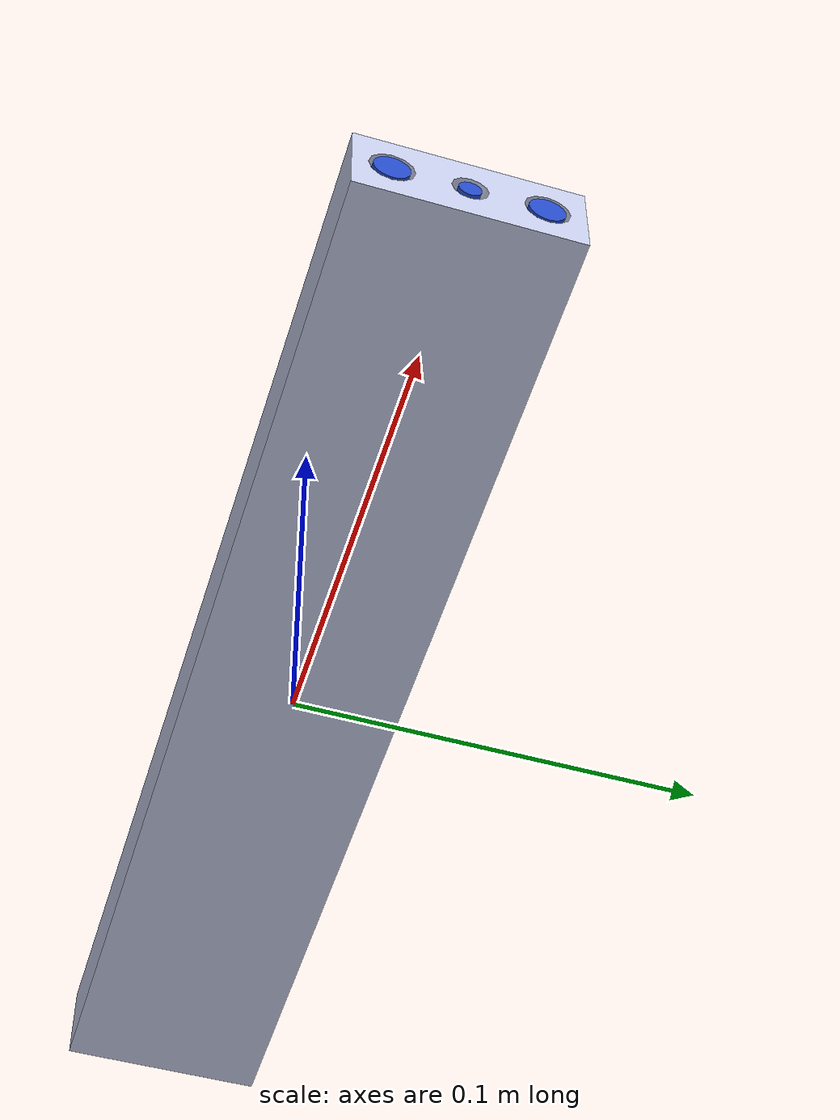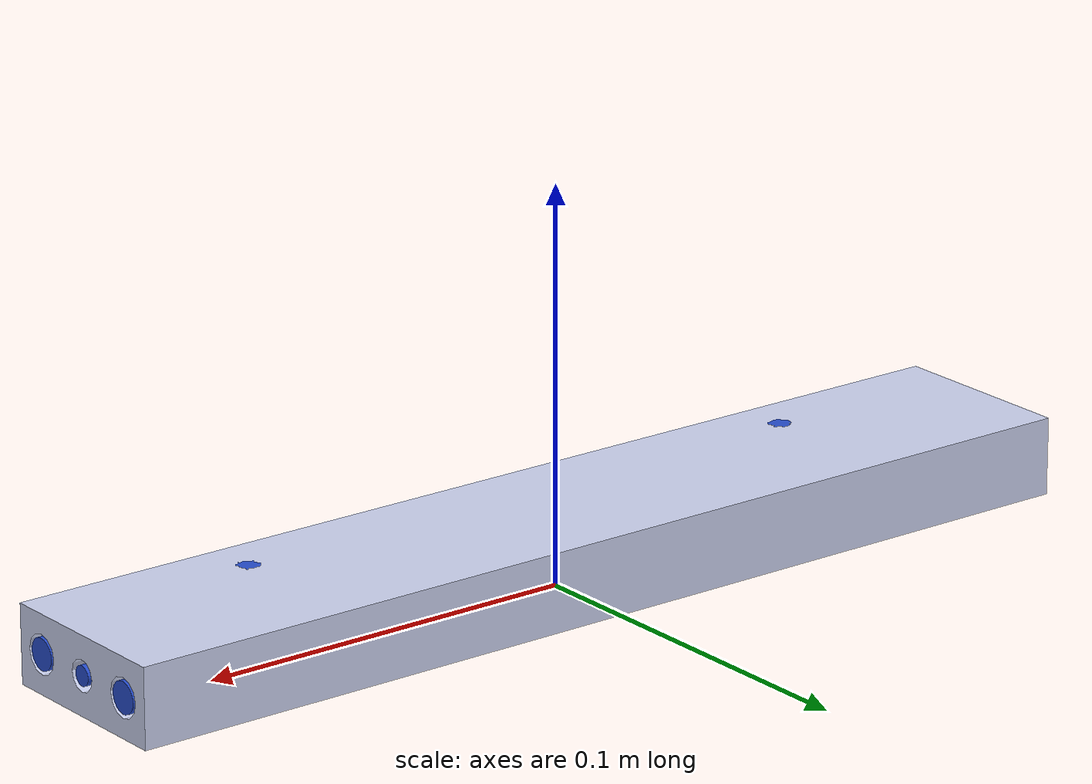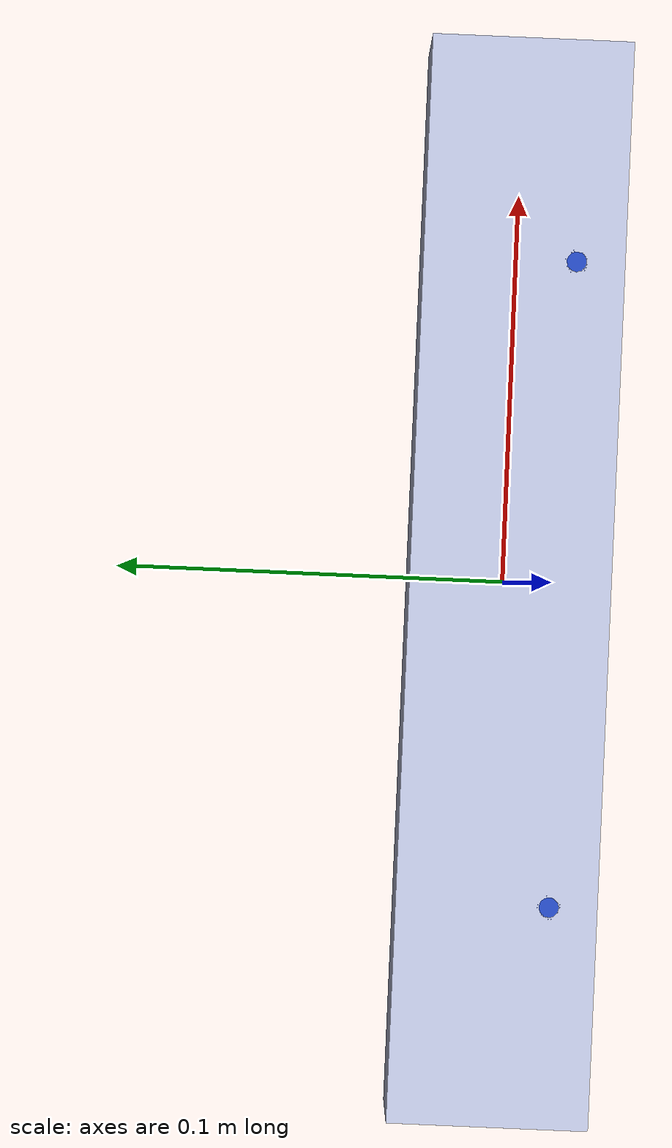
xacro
<?xml version="1.0" encoding="utf-8"?>
<robot name="PART3.SLDPRT" xmlns:xacro="http://www.ros.org/wiki/xacro">

	<link name="PART3.SLDPRT">
		<inertial>
			<origin xyz="-1.6524E-18 1.9536E-05 0.0099925" rpy="0 0 0"></origin>
			<mass value="0.26131"></mass>
			<inertia ixx="6.3365E-05" ixy="-1.8215E-20" ixz="1.4204E-20" iyy="0.0015168" iyz="2.5564E-08" izz="0.0015623"></inertia>
		</inertial>
		<visual>
			<origin xyz="0 0 0" rpy="0 0 0"></origin>
			<geometry>
				<mesh filename="package://object_description/urdfs_from_hj/PART3.SLDPRT/meshes/PART3.SLDPRT.STL"></mesh>
			</geometry>
			<material name="">
				<color rgba="0.79216 0.81961 0.93333 1"></color>
			</material>
		</visual>
		<collision>
			<origin xyz="0 0 0" rpy="0 0 0"></origin>
			<geometry>
				<mesh filename="package://object_description/urdfs_from_hj/PART3.SLDPRT/meshes/PART3.SLDPRT.STL"></mesh>
			</geometry>
		</collision>
	</link>
	<link name="PART3 hole blocked 1">
		<visual>
			<origin xyz="0 0 0" rpy="0 0 0"></origin>
			<geometry>
				<cylinder length="0.023" radius="0.004"></cylinder>
			</geometry>
		</visual>
	</link>
	<link name="PART3 hole blocked 2">
		<visual>
			<origin xyz="0 0 0" rpy="0 0 0"></origin>
			<geometry>
				<cylinder length="0.023" radius="0.004"></cylinder>
			</geometry>
		</visual>
	</link>
	<link name="PART3 hole blocked 3">
		<visual>
			<origin xyz="0 0 0" rpy="0 0 0"></origin>
			<geometry>
				<cylinder length="0.023" radius="0.0025"></cylinder>
			</geometry>
		</visual>
	</link>
	<link name="PART3 hole blocked 4">
		<visual>
			<origin xyz="0 0 0" rpy="0 0 0"></origin>
			<geometry>
				<cylinder length="0.023" radius="0.0025"></cylinder>
			</geometry>
		</visual>
	</link>
	<link name="PART3 hole blocked 5">
		<visual>
			<origin xyz="0 0 0" rpy="0 0 0"></origin>
			<geometry>
				<cylinder length="0.023" radius="0.004"></cylinder>
			</geometry>
		</visual>
	</link>
	<link name="PART3 hole blocked 6">
		<visual>
			<origin xyz="0 0 0" rpy="0 0 0"></origin>
			<geometry>
				<cylinder length="0.023" radius="0.004"></cylinder>
			</geometry>
		</visual>
	</link>
	<link name="PART3 hole blocked 7">
		<visual>
			<origin xyz="0 0 0" rpy="0 0 0"></origin>
			<geometry>
				<cylinder length="0.013" radius="0.003"></cylinder>
			</geometry>
		</visual>
	</link>
	<link name="PART3 hole blocked 8">
		<visual>
			<origin xyz="0 0 0" rpy="0 0 0"></origin>
			<geometry>
				<cylinder length="0.013" radius="0.003"></cylinder>
			</geometry>
		</visual>
	</link>
	<joint name="PART3 hole blocked 1 joint" type="fixed">
		<origin xyz="-0.1235 -0.0165 0.01" rpy="-0.0 1.57079632679 0.0"></origin>
		<parent link="PART3.SLDPRT"></parent>
		<child link="PART3 hole blocked 1"></child>
	</joint>
	<joint name="PART3 hole blocked 2 joint" type="fixed">
		<origin xyz="0.1235 -0.0165 0.01" rpy="0.0 -1.57079632679 0.0"></origin>
		<parent link="PART3.SLDPRT"></parent>
		<child link="PART3 hole blocked 2"></child>
	</joint>
	<joint name="PART3 hole blocked 3 joint" type="fixed">
		<origin xyz="-0.1235 0.0 0.01" rpy="-0.0 1.57079632679 0.0"></origin>
		<parent link="PART3.SLDPRT"></parent>
		<child link="PART3 hole blocked 3"></child>
	</joint>
	<joint name="PART3 hole blocked 4 joint" type="fixed">
		<origin xyz="0.1235 0.0 0.01" rpy="0.0 -1.57079632679 0.0"></origin>
		<parent link="PART3.SLDPRT"></parent>
		<child link="PART3 hole blocked 4"></child>
	</joint>
	<joint name="PART3 hole blocked 5 joint" type="fixed">
		<origin xyz="-0.1235 0.0165 0.01" rpy="-0.0 1.57079632679 0.0"></origin>
		<parent link="PART3.SLDPRT"></parent>
		<child link="PART3 hole blocked 5"></child>
	</joint>
	<joint name="PART3 hole blocked 6 joint" type="fixed">
		<origin xyz="0.1235 0.0165 0.01" rpy="0.0 -1.57079632679 0.0"></origin>
		<parent link="PART3.SLDPRT"></parent>
		<child link="PART3 hole blocked 6"></child>
	</joint>
	<joint name="PART3 hole blocked 7 joint" type="fixed">
		<origin xyz="-0.08 -0.013 0.0135" rpy="0.0 3.14159265359 0.0"></origin>
		<parent link="PART3.SLDPRT"></parent>
		<child link="PART3 hole blocked 7"></child>
	</joint>
	<joint name="PART3 hole blocked 8 joint" type="fixed">
		<origin xyz="0.08 -0.013 0.0135" rpy="0.0 3.14159265359 0.0"></origin>
		<parent link="PART3.SLDPRT"></parent>
		<child link="PART3 hole blocked 8"></child>
	</joint>
	<gazebo reference="PART3 hole blocked 1">
		<material>Gazebo/BlueTransparent</material>
	</gazebo>
	<gazebo reference="PART3 hole blocked 2">
		<material>Gazebo/BlueTransparent</material>
	</gazebo>
	<gazebo reference="PART3 hole blocked 3">
		<material>Gazebo/BlueTransparent</material>
	</gazebo>
	<gazebo reference="PART3 hole blocked 4">
		<material>Gazebo/BlueTransparent</material>
	</gazebo>
	<gazebo reference="PART3 hole blocked 5">
		<material>Gazebo/BlueTransparent</material>
	</gazebo>
	<gazebo reference="PART3 hole blocked 6">
		<material>Gazebo/BlueTransparent</material>
	</gazebo>
	<gazebo reference="PART3 hole blocked 7">
		<material>Gazebo/BlueTransparent</material>
	</gazebo>
	<gazebo reference="PART3 hole blocked 8">
		<material>Gazebo/BlueTransparent</material>
	</gazebo>
</robot>
